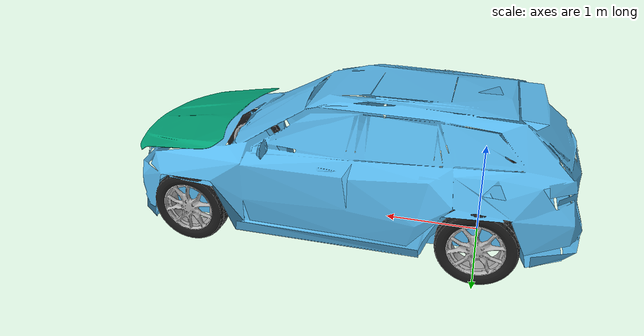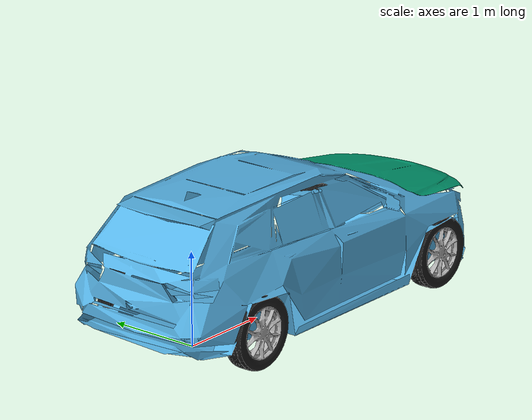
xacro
<?xml version="1.0"?>

<robot name="jeep_structure" xmlns:xacro="http://www.ros.org/wiki/xacro" >
  <xacro:arg name="dae_file" default="$(find dbw_fca_description)/meshes/jeep_18/body.dae"/>

  <xacro:property name="half_track_width" value="0.825" />
  <xacro:property name="half_wheelbase" value="1.458" />

  <xacro:property name="wheel_radius" value="0.365" />
  <xacro:property name="wheel_thickness" value="0.25" />
  <xacro:property name="wheel_mass" value="10.0" />

  <xacro:property name="body_mass" value="2242.0" />
  <xacro:property name="body_width" value="${2*half_track_width}" />
  <xacro:property name="body_depth" value="${2*half_wheelbase + 1.2}" />
  <xacro:property name="body_length" value="0.6" />

  <xacro:macro name="rear_wheel" params="name x y z flip" >
    <link name="wheel_${name}" >
      <visual>
        <origin xyz="0 0 0" rpy="-1.57079632679 ${flip * 3.1415926535} 0" />
        <geometry>
          <mesh filename="package://dbw_fca_description/meshes/jeep_18/wheel.dae" />
        </geometry>
      </visual>

      <collision>
        <geometry>
          <cylinder radius="${wheel_radius}" length="${wheel_thickness}" />
        </geometry>
      </collision>

      <inertial>
        <origin xyz="0 0 0" rpy="0 0 0"/>
        <mass value="${wheel_mass}"/>
        <inertia ixx="${wheel_mass/12*(3*wheel_radius*wheel_radius + wheel_thickness*wheel_thickness)}" ixy="0" ixz="0" iyy="${wheel_mass/12*(3*wheel_radius*wheel_radius + wheel_thickness*wheel_thickness)}" iyz="0" izz="${wheel_mass/2 * wheel_radius*wheel_radius}"/>
      </inertial>

    </link>
    <joint name="wheel_${name}_joint" type="continuous" >
      <parent link="base_link" />
      <child link="wheel_${name}" />
      <origin xyz="${x} ${y} ${z}" rpy="-1.57079632679 0 0" />
      <axis xyz="0 0 1" />
      <limit effort="0" velocity="22.0" />
    </joint>
  </xacro:macro>

  <xacro:macro name="front_wheel" params="name x y z flip" >
    <link name="wheel_${name}" >
      <visual>
        <origin xyz="0 0 0" rpy="-1.57079632679 ${flip * pi} 0" />
        <geometry>
          <mesh filename="package://dbw_fca_description/meshes/jeep_18/wheel.dae" />
        </geometry>
      </visual>

      <collision>
        <geometry>
          <cylinder radius="${wheel_radius}" length="${wheel_thickness}" />
        </geometry>
      </collision>

      <inertial>
        <origin xyz="0 0 0" rpy="0 0 0"/>
        <mass value="${wheel_mass}"/>
        <inertia ixx="${wheel_mass/12*(3*wheel_radius*wheel_radius + wheel_thickness*wheel_thickness)}" ixy="0" ixz="0" iyy="${wheel_mass/12*(3*wheel_radius*wheel_radius + wheel_thickness*wheel_thickness)}" iyz="0" izz="${wheel_mass/2 * wheel_radius*wheel_radius}"/>
      </inertial>
    </link>

    <link name="steer_${name}" >
      <inertial>
        <origin xyz="-0.013054 -0.0295 0" rpy="0 0 0"/>
        <mass value="1.0"/>
        <inertia ixx="0.037227" ixy="0" ixz="0" iyy="0.04" iyz="0" izz="0.06"/>
      </inertial>
    </link>

    <joint name="steer_${name}_joint" type="revolute" >
      <parent link="base_link" />
      <child link="steer_${name}" />
      <origin xyz="${x} ${y} ${z}" rpy="0 0 0" />
      <axis xyz="0 0 1" />
      <limit upper="0.6" lower="-0.6" effort="0.0" velocity="0.0" />
    </joint>

    <joint name="wheel_${name}_joint" type="continuous" >
      <parent link="steer_${name}" />
      <child link="wheel_${name}" />
      <origin xyz="0 0 0" rpy="-1.57079632679 0 0" />
      <axis xyz="0 0 1" />
      <limit effort="0" velocity="22.0" />
    </joint>
  </xacro:macro>

  <link name="base_footprint" />

  <link name="base_link" >
    <visual>
      <origin xyz="-0.06 0 0.1" rpy="0 0 0" />
      <geometry>
        <mesh filename="file://$(arg dae_file)" scale="1 0.96 1" />
      </geometry>
    </visual>
    <collision>
      <origin xyz="-0.06 0 0.1" rpy="0 0 0" />
      <geometry>
        <mesh filename="package://dbw_fca_description/meshes/jeep_18/body_collision.stl" scale="0.96 0.96 0.96" />
      </geometry>
      </collision>
    <inertial>
      <origin xyz="-0.25 0 0.3" rpy="0 0 0"/>
      <mass value="${body_mass}"/>
      <inertia ixx="${body_mass/12 * (body_width*body_width + body_length*body_length)}" ixy="0" ixz="0" iyy="${body_mass/12 * (body_length*body_length + body_depth*body_depth)}" iyz="0" izz="${body_mass/12 * (body_width*body_width + body_depth*body_depth)}"/>
    </inertial>
  </link>

  <link name="hood_logo" >
    <visual>
      <origin xyz="-0.06 0 0.102" rpy="0 0 0" />
      <geometry>
        <mesh filename="package://dbw_fca_description/meshes/jeep_18/hood_logo.dae" scale="1 1 1" />
      </geometry>
    </visual>
  </link>

  <joint name="base_link_joint" type="fixed" >
    <parent link="base_footprint" />
    <child link="base_link" />
    <origin xyz="${half_wheelbase} 0 ${wheel_radius}" rpy="0 0 0" />
  </joint>

  <joint name="hood_logo_joint" type="fixed" >
    <parent link="base_link" />
    <child link="hood_logo" />
    <origin xyz="0 0 0" rpy="0 0 0" />
  </joint>

  <xacro:rear_wheel name="rl" x="${-half_wheelbase}" y="${half_track_width}" z="0" flip="0" />
  <xacro:rear_wheel name="rr" x="${-half_wheelbase}" y="${-half_track_width}" z="0" flip="1" />
  <xacro:front_wheel name="fl" x="${half_wheelbase}" y="${half_track_width}" z="0" flip="0" />
  <xacro:front_wheel name="fr" x="${half_wheelbase}" y="${-half_track_width}" z="0" flip="1" />

  <gazebo reference="hood_logo" >
    <visual>
      <transparency>0.01</transparency>
    </visual>
  </gazebo>

</robot>
